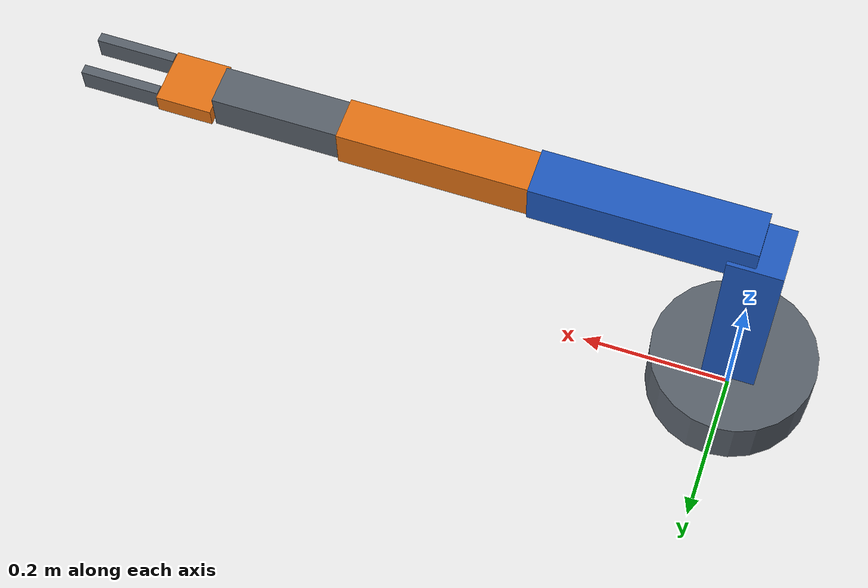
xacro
<?xml version="1.0"?>
<robot xmlns:xacro="http://www.ros.org/wiki/xacro" name="homearm">
  <material name="gray"><color rgba="0.35 0.38 0.42 1"/></material>
  <material name="blue"><color rgba="0.12 0.35 0.75 1"/></material>
  <material name="orange"><color rgba="0.9 0.45 0.08 1"/></material>

  <link name="arm_base_footprint"/>

  <link name="arm_base_link">
    <visual>
      <origin xyz="0 0 0.04"/>
      <geometry><cylinder radius="0.11" length="0.08"/></geometry>
      <material name="gray"/>
    </visual>
    <collision>
      <origin xyz="0 0 0.04"/>
      <geometry><cylinder radius="0.11" length="0.08"/></geometry>
    </collision>
    <inertial>
      <origin xyz="0 0 0.04"/>
      <mass value="2.0"/>
      <inertia ixx="0.01" iyy="0.01" izz="0.01" ixy="0" ixz="0" iyz="0"/>
    </inertial>
  </link>

  <joint name="arm_base_footprint_joint" type="fixed">
    <parent link="arm_base_footprint"/>
    <child link="arm_base_link"/>
    <origin xyz="0 0 0" rpy="0 0 0"/>
  </joint>

  <link name="shoulder_link">
    <visual>
      <origin xyz="0 0 0.14"/>
      <geometry><box size="0.07 0.07 0.28"/></geometry>
      <material name="blue"/>
    </visual>
    <collision>
      <origin xyz="0 0 0.14"/>
      <geometry><box size="0.06 0.06 0.28"/></geometry>
    </collision>
    <inertial>
      <origin xyz="0 0 0.14"/>
      <mass value="1.0"/>
      <inertia ixx="0.008" iyy="0.008" izz="0.003" ixy="0" ixz="0" iyz="0"/>
    </inertial>
  </link>

  <joint name="joint1" type="revolute">
    <parent link="arm_base_link"/>
    <child link="shoulder_link"/>
    <origin xyz="0 0 0.08" rpy="0 0 0"/>
    <axis xyz="0 0 1"/>
    <limit lower="-2.8" upper="2.8" effort="40" velocity="1.5"/>
  </joint>

  <link name="upper_arm_link">
    <visual>
      <origin xyz="0.14 0 0"/>
      <geometry><box size="0.28 0.06 0.06"/></geometry>
      <material name="blue"/>
    </visual>
    <collision>
      <origin xyz="0.14 0 0"/>
      <geometry><box size="0.28 0.05 0.05"/></geometry>
    </collision>
    <inertial>
      <origin xyz="0.14 0 0"/>
      <mass value="0.8"/>
      <inertia ixx="0.002" iyy="0.007" izz="0.007" ixy="0" ixz="0" iyz="0"/>
    </inertial>
  </link>

  <joint name="joint2" type="revolute">
    <parent link="shoulder_link"/>
    <child link="upper_arm_link"/>
    <origin xyz="0 0 0.28" rpy="0 0 0"/>
    <axis xyz="0 1 0"/>
    <limit lower="-1.8" upper="1.8" effort="30" velocity="1.3"/>
  </joint>

  <link name="forearm_link">
    <visual>
      <origin xyz="0.12 0 0"/>
      <geometry><box size="0.24 0.055 0.055"/></geometry>
      <material name="orange"/>
    </visual>
    <collision>
      <origin xyz="0.12 0 0"/>
      <geometry><box size="0.24 0.045 0.045"/></geometry>
    </collision>
    <inertial>
      <origin xyz="0.12 0 0"/>
      <mass value="0.6"/>
      <inertia ixx="0.0015" iyy="0.004" izz="0.004" ixy="0" ixz="0" iyz="0"/>
    </inertial>
  </link>

  <joint name="joint3" type="revolute">
    <parent link="upper_arm_link"/>
    <child link="forearm_link"/>
    <origin xyz="0.28 0 0" rpy="0 0 0"/>
    <axis xyz="0 1 0"/>
    <limit lower="-2.2" upper="2.2" effort="25" velocity="1.5"/>
  </joint>

  <link name="wrist_link">
    <visual>
      <origin xyz="0.08 0 0"/>
      <geometry><box size="0.16 0.05 0.05"/></geometry>
      <material name="gray"/>
    </visual>
    <collision>
      <origin xyz="0.08 0 0"/>
      <geometry><box size="0.16 0.04 0.04"/></geometry>
    </collision>
    <inertial>
      <origin xyz="0.08 0 0"/>
      <mass value="0.4"/>
      <inertia ixx="0.001" iyy="0.0025" izz="0.0025" ixy="0" ixz="0" iyz="0"/>
    </inertial>
  </link>

  <joint name="joint4" type="revolute">
    <parent link="forearm_link"/>
    <child link="wrist_link"/>
    <origin xyz="0.24 0 0" rpy="0 0 0"/>
    <axis xyz="1 0 0"/>
    <limit lower="-2.8" upper="2.8" effort="15" velocity="2.0"/>
  </joint>

  <link name="tool_link">
    <visual>
      <origin xyz="0.035 0 0"/>
      <geometry><box size="0.07 0.07 0.025"/></geometry>
      <material name="orange"/>
    </visual>
    <collision>
      <origin xyz="0.035 0 0"/>
      <geometry><box size="0.07 0.06 0.02"/></geometry>
    </collision>
    <inertial>
      <origin xyz="0.035 0 0"/>
      <mass value="0.2"/>
      <inertia ixx="0.0002" iyy="0.0002" izz="0.0002" ixy="0" ixz="0" iyz="0"/>
    </inertial>
  </link>

  <joint name="tool_joint" type="fixed">
    <parent link="wrist_link"/>
    <child link="tool_link"/>
    <origin xyz="0.16 0 0"/>
  </joint>

  <link name="gripper_fixed_finger_link">
    <visual>
      <origin xyz="0.05 0 0"/>
      <geometry><box size="0.10 0.012 0.03"/></geometry>
      <material name="gray"/>
    </visual>
    <collision>
      <origin xyz="0.05 0 0"/>
      <geometry><box size="0.10 0.012 0.03"/></geometry>
    </collision>
  </link>

  <joint name="gripper_fixed_finger_joint" type="fixed">
    <parent link="tool_link"/>
    <child link="gripper_fixed_finger_link"/>
    <origin xyz="0.07 -0.025 0"/>
  </joint>

  <link name="gripper_finger_link">
    <visual>
      <origin xyz="0.05 0 0"/>
      <geometry><box size="0.10 0.012 0.03"/></geometry>
      <material name="gray"/>
    </visual>
    <collision>
      <origin xyz="0.05 0 0"/>
      <geometry><box size="0.10 0.012 0.03"/></geometry>
    </collision>
  </link>

  <joint name="gripper_joint" type="prismatic">
    <parent link="tool_link"/>
    <child link="gripper_finger_link"/>
    <origin xyz="0.07 0.025 0"/>
    <axis xyz="0 1 0"/>
    <limit lower="0.0" upper="0.04" effort="20" velocity="0.08"/>
  </joint>

  <ros2_control name="HomeArmSystem" type="system">
    <hardware>
      <plugin>mock_components/GenericSystem</plugin>
      <param name="calculate_dynamics">false</param>
    </hardware>

    <joint name="joint1">
      <command_interface name="position"/>
      <state_interface name="position">
        <param name="initial_value">0.0</param>
      </state_interface>
      <state_interface name="velocity"/>
    </joint>
    <joint name="joint2">
      <command_interface name="position"/>
      <state_interface name="position">
        <param name="initial_value">0.0</param>
      </state_interface>
      <state_interface name="velocity"/>
    </joint>
    <joint name="joint3">
      <command_interface name="position"/>
      <state_interface name="position">
        <param name="initial_value">0.0</param>
      </state_interface>
      <state_interface name="velocity"/>
    </joint>
    <joint name="joint4">
      <command_interface name="position"/>
      <state_interface name="position">
        <param name="initial_value">0.0</param>
      </state_interface>
      <state_interface name="velocity"/>
    </joint>
    <joint name="gripper_joint">
      <command_interface name="position"/>
      <state_interface name="position">
        <param name="initial_value">0.04</param>
      </state_interface>
      <state_interface name="velocity"/>
    </joint>
  </ros2_control>
</robot>
